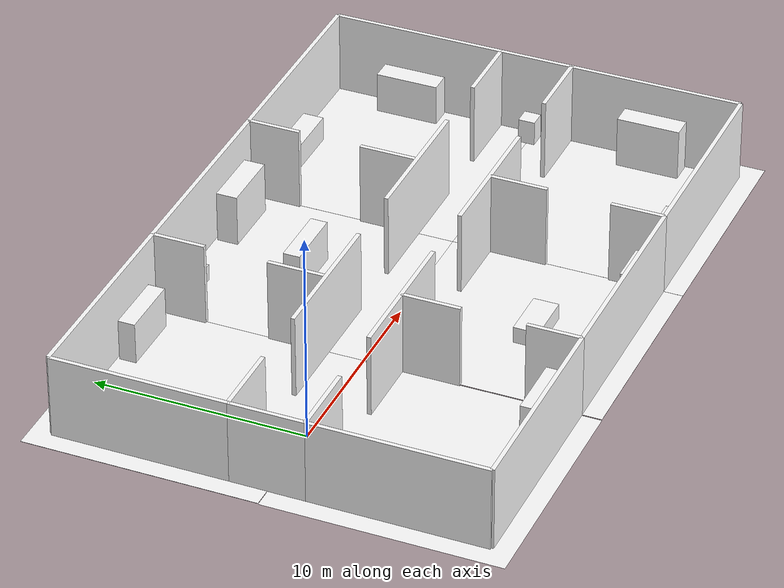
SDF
<?xml version="1.0" encoding="UTF-8"?>
<sdf version="1.9">
  <world name="office_plain">
    <physics type="ode">
      <max_step_size>0.004</max_step_size>
      <real_time_factor>1.0</real_time_factor>
      <real_time_update_rate>250</real_time_update_rate>
    </physics>
    <gravity>0 0 -9.81</gravity>
    <magnetic_field>6e-06 2.3e-05 -4.2e-05</magnetic_field>
    <atmosphere type="adiabatic"/>
    <scene>
      <grid>false</grid>
      <ambient>0.4 0.4 0.4 1</ambient>
      <background>0.7 0.7 0.7 1</background>
      <shadows>false</shadows>
    </scene>
    <include>
      <uri>model://office_plain_scene</uri>
      <name>office_plain_scene</name>
      <pose>0 0 0 0 0 0</pose>
    </include>
    <light name="sunUTC" type="directional">
      <pose>0 0 500 0 -0 0</pose>
      <cast_shadows>true</cast_shadows>
      <intensity>1</intensity>
      <direction>0.001 0.625 -0.78</direction>
      <diffuse>0.904 0.904 0.904 1</diffuse>
      <specular>0.271 0.271 0.271 1</specular>
      <attenuation><range>2000</range><linear>0</linear><constant>1</constant><quadratic>0</quadratic></attenuation>
      <spot><inner_angle>0</inner_angle><outer_angle>0</outer_angle><falloff>0</falloff></spot>
    </light>
    <spherical_coordinates>
      <surface_model>EARTH_WGS84</surface_model>
      <world_frame_orientation>ENU</world_frame_orientation>
      <latitude_deg>47.397971057728974</latitude_deg>
      <longitude_deg> 8.546163739800146</longitude_deg>
      <elevation>0</elevation>
    </spherical_coordinates>
  </world>
</sdf>

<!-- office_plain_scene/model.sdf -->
<!-- GENERATED by docker/sim/tools/gen_office_world.py -- do not edit. -->
<sdf version="1.9">
  <model name="office_plain_scene">
    <static>true</static>
    <link name="ground">
      <collision name="c"><geometry><plane><normal>0 0 1</normal><size>100 100</size></plane></geometry></collision>
    </link>
    <link name="floor_00">
      <pose>0.5 -5.5 0 0 0 0</pose>
      <visual name="v">
        <geometry><plane><normal>0 0 1</normal><size>11.0 11.0</size></plane></geometry>
        <material>
          <diffuse>1 1 1 1</diffuse>
          <emissive>0.55 0.55 0.55 1</emissive>
          <pbr><metal>
            <albedo_map>model://office_plain_scene/materials/textures/floor_00.png</albedo_map>
            <emissive_map>model://office_plain_scene/materials/textures/floor_00.png</emissive_map>
            <metalness>0.0</metalness><roughness>1.0</roughness>
          </metal></pbr>
        </material>
      </visual>
    </link>
    <link name="floor_01">
      <pose>0.5 5.5 0 0 0 0</pose>
      <visual name="v">
        <geometry><plane><normal>0 0 1</normal><size>11.0 11.0</size></plane></geometry>
        <material>
          <diffuse>1 1 1 1</diffuse>
          <emissive>0.55 0.55 0.55 1</emissive>
          <pbr><metal>
            <albedo_map>model://office_plain_scene/materials/textures/floor_01.png</albedo_map>
            <emissive_map>model://office_plain_scene/materials/textures/floor_01.png</emissive_map>
            <metalness>0.0</metalness><roughness>1.0</roughness>
          </metal></pbr>
        </material>
      </visual>
    </link>
    <link name="floor_10">
      <pose>11.0 -5.5 0 0 0 0</pose>
      <visual name="v">
        <geometry><plane><normal>0 0 1</normal><size>10.0 11.0</size></plane></geometry>
        <material>
          <diffuse>1 1 1 1</diffuse>
          <emissive>0.15 0.15 0.15 1</emissive>
          <pbr><metal>
            <albedo_map>model://office_plain_scene/materials/textures/floor_10.png</albedo_map>
            <emissive_map>model://office_plain_scene/materials/textures/floor_10.png</emissive_map>
            <metalness>0.0</metalness><roughness>1.0</roughness>
          </metal></pbr>
        </material>
      </visual>
    </link>
    <link name="floor_11">
      <pose>11.0 5.5 0 0 0 0</pose>
      <visual name="v">
        <geometry><plane><normal>0 0 1</normal><size>10.0 11.0</size></plane></geometry>
        <material>
          <diffuse>1 1 1 1</diffuse>
          <emissive>0.55 0.55 0.55 1</emissive>
          <pbr><metal>
            <albedo_map>model://office_plain_scene/materials/textures/floor_11.png</albedo_map>
            <emissive_map>model://office_plain_scene/materials/textures/floor_11.png</emissive_map>
            <metalness>0.0</metalness><roughness>1.0</roughness>
          </metal></pbr>
        </material>
      </visual>
    </link>
    <link name="floor_20">
      <pose>21.5 -5.5 0 0 0 0</pose>
      <visual name="v">
        <geometry><plane><normal>0 0 1</normal><size>11.0 11.0</size></plane></geometry>
        <material>
          <diffuse>1 1 1 1</diffuse>
          <emissive>0.55 0.55 0.55 1</emissive>
          <pbr><metal>
            <albedo_map>model://office_plain_scene/materials/textures/floor_20.png</albedo_map>
            <emissive_map>model://office_plain_scene/materials/textures/floor_20.png</emissive_map>
            <metalness>0.0</metalness><roughness>1.0</roughness>
          </metal></pbr>
        </material>
      </visual>
    </link>
    <link name="floor_21">
      <pose>21.5 5.5 0 0 0 0</pose>
      <visual name="v">
        <geometry><plane><normal>0 0 1</normal><size>11.0 11.0</size></plane></geometry>
        <material>
          <diffuse>1 1 1 1</diffuse>
          <emissive>0.55 0.55 0.55 1</emissive>
          <pbr><metal>
            <albedo_map>model://office_plain_scene/materials/textures/floor_21.png</albedo_map>
            <emissive_map>model://office_plain_scene/materials/textures/floor_21.png</emissive_map>
            <metalness>0.0</metalness><roughness>1.0</roughness>
          </metal></pbr>
        </material>
      </visual>
    </link>
    <link name="outer_s0">
      <pose>1.0 -10.0 2.0 0 0 0</pose>
      <collision name="c"><geometry><box><size>10.0 0.2 4.0</size></box></geometry></collision>
      <visual name="v">
        <geometry><box><size>10.0 0.2 4.0</size></box></geometry>
        <material>
          <diffuse>1 1 1 1</diffuse>
          <emissive>0.55 0.55 0.55 1</emissive>
          <pbr><metal>
            <albedo_map>model://office_plain_scene/materials/textures/outer_s0.png</albedo_map>
            <emissive_map>model://office_plain_scene/materials/textures/outer_s0.png</emissive_map>
            <metalness>0.0</metalness><roughness>1.0</roughness>
          </metal></pbr>
        </material>
      </visual>
    </link>
    <link name="outer_n0">
      <pose>1.0 10.0 2.0 0 0 0</pose>
      <collision name="c"><geometry><box><size>10.0 0.2 4.0</size></box></geometry></collision>
      <visual name="v">
        <geometry><box><size>10.0 0.2 4.0</size></box></geometry>
        <material>
          <diffuse>1 1 1 1</diffuse>
          <emissive>0.55 0.55 0.55 1</emissive>
          <pbr><metal>
            <albedo_map>model://office_plain_scene/materials/textures/outer_n0.png</albedo_map>
            <emissive_map>model://office_plain_scene/materials/textures/outer_n0.png</emissive_map>
            <metalness>0.0</metalness><roughness>1.0</roughness>
          </metal></pbr>
        </material>
      </visual>
    </link>
    <link name="outer_s1">
      <pose>11.0 -10.0 2.0 0 0 0</pose>
      <collision name="c"><geometry><box><size>10.0 0.2 4.0</size></box></geometry></collision>
      <visual name="v">
        <geometry><box><size>10.0 0.2 4.0</size></box></geometry>
        <material>
          <diffuse>1 1 1 1</diffuse>
          <emissive>0.15 0.15 0.15 1</emissive>
          <pbr><metal>
            <albedo_map>model://office_plain_scene/materials/textures/outer_s1.png</albedo_map>
            <emissive_map>model://office_plain_scene/materials/textures/outer_s1.png</emissive_map>
            <metalness>0.0</metalness><roughness>1.0</roughness>
          </metal></pbr>
        </material>
      </visual>
    </link>
    <link name="outer_n1">
      <pose>11.0 10.0 2.0 0 0 0</pose>
      <collision name="c"><geometry><box><size>10.0 0.2 4.0</size></box></geometry></collision>
      <visual name="v">
        <geometry><box><size>10.0 0.2 4.0</size></box></geometry>
        <material>
          <diffuse>1 1 1 1</diffuse>
          <emissive>0.55 0.55 0.55 1</emissive>
          <pbr><metal>
            <albedo_map>model://office_plain_scene/materials/textures/outer_n1.png</albedo_map>
            <emissive_map>model://office_plain_scene/materials/textures/outer_n1.png</emissive_map>
            <metalness>0.0</metalness><roughness>1.0</roughness>
          </metal></pbr>
        </material>
      </visual>
    </link>
    <link name="outer_s2">
      <pose>21.0 -10.0 2.0 0 0 0</pose>
      <collision name="c"><geometry><box><size>10.0 0.2 4.0</size></box></geometry></collision>
      <visual name="v">
        <geometry><box><size>10.0 0.2 4.0</size></box></geometry>
        <material>
          <diffuse>1 1 1 1</diffuse>
          <emissive>0.55 0.55 0.55 1</emissive>
          <pbr><metal>
            <albedo_map>model://office_plain_scene/materials/textures/outer_s2.png</albedo_map>
            <emissive_map>model://office_plain_scene/materials/textures/outer_s2.png</emissive_map>
            <metalness>0.0</metalness><roughness>1.0</roughness>
          </metal></pbr>
        </material>
      </visual>
    </link>
    <link name="outer_n2">
      <pose>21.0 10.0 2.0 0 0 0</pose>
      <collision name="c"><geometry><box><size>10.0 0.2 4.0</size></box></geometry></collision>
      <visual name="v">
        <geometry><box><size>10.0 0.2 4.0</size></box></geometry>
        <material>
          <diffuse>1 1 1 1</diffuse>
          <emissive>0.55 0.55 0.55 1</emissive>
          <pbr><metal>
            <albedo_map>model://office_plain_scene/materials/textures/outer_n2.png</albedo_map>
            <emissive_map>model://office_plain_scene/materials/textures/outer_n2.png</emissive_map>
            <metalness>0.0</metalness><roughness>1.0</roughness>
          </metal></pbr>
        </material>
      </visual>
    </link>
    <link name="outer_w0">
      <pose>-4.0 -5.875 2.0 0 0 0</pose>
      <collision name="c"><geometry><box><size>0.2 8.25 4.0</size></box></geometry></collision>
      <visual name="v">
        <geometry><box><size>0.2 8.25 4.0</size></box></geometry>
        <material>
          <diffuse>1 1 1 1</diffuse>
          <emissive>0.55 0.55 0.55 1</emissive>
          <pbr><metal>
            <albedo_map>model://office_plain_scene/materials/textures/outer_w0.png</albedo_map>
            <emissive_map>model://office_plain_scene/materials/textures/outer_w0.png</emissive_map>
            <metalness>0.0</metalness><roughness>1.0</roughness>
          </metal></pbr>
        </material>
      </visual>
    </link>
    <link name="outer_e0">
      <pose>26.0 -5.875 2.0 0 0 0</pose>
      <collision name="c"><geometry><box><size>0.2 8.25 4.0</size></box></geometry></collision>
      <visual name="v">
        <geometry><box><size>0.2 8.25 4.0</size></box></geometry>
        <material>
          <diffuse>1 1 1 1</diffuse>
          <emissive>0.55 0.55 0.55 1</emissive>
          <pbr><metal>
            <albedo_map>model://office_plain_scene/materials/textures/outer_e0.png</albedo_map>
            <emissive_map>model://office_plain_scene/materials/textures/outer_e0.png</emissive_map>
            <metalness>0.0</metalness><roughness>1.0</roughness>
          </metal></pbr>
        </material>
      </visual>
    </link>
    <link name="outer_w1">
      <pose>-4.0 0.0 2.0 0 0 0</pose>
      <collision name="c"><geometry><box><size>0.2 3.5 4.0</size></box></geometry></collision>
      <visual name="v">
        <geometry><box><size>0.2 3.5 4.0</size></box></geometry>
        <material>
          <diffuse>1 1 1 1</diffuse>
          <emissive>0.55 0.55 0.55 1</emissive>
          <pbr><metal>
            <albedo_map>model://office_plain_scene/materials/textures/outer_w1.png</albedo_map>
            <emissive_map>model://office_plain_scene/materials/textures/outer_w1.png</emissive_map>
            <metalness>0.0</metalness><roughness>1.0</roughness>
          </metal></pbr>
        </material>
      </visual>
    </link>
    <link name="outer_e1">
      <pose>26.0 0.0 2.0 0 0 0</pose>
      <collision name="c"><geometry><box><size>0.2 3.5 4.0</size></box></geometry></collision>
      <visual name="v">
        <geometry><box><size>0.2 3.5 4.0</size></box></geometry>
        <material>
          <diffuse>1 1 1 1</diffuse>
          <emissive>0.55 0.55 0.55 1</emissive>
          <pbr><metal>
            <albedo_map>model://office_plain_scene/materials/textures/outer_e1.png</albedo_map>
            <emissive_map>model://office_plain_scene/materials/textures/outer_e1.png</emissive_map>
            <metalness>0.0</metalness><roughness>1.0</roughness>
          </metal></pbr>
        </material>
      </visual>
    </link>
    <link name="outer_w2">
      <pose>-4.0 5.875 2.0 0 0 0</pose>
      <collision name="c"><geometry><box><size>0.2 8.25 4.0</size></box></geometry></collision>
      <visual name="v">
        <geometry><box><size>0.2 8.25 4.0</size></box></geometry>
        <material>
          <diffuse>1 1 1 1</diffuse>
          <emissive>0.55 0.55 0.55 1</emissive>
          <pbr><metal>
            <albedo_map>model://office_plain_scene/materials/textures/outer_w2.png</albedo_map>
            <emissive_map>model://office_plain_scene/materials/textures/outer_w2.png</emissive_map>
            <metalness>0.0</metalness><roughness>1.0</roughness>
          </metal></pbr>
        </material>
      </visual>
    </link>
    <link name="outer_e2">
      <pose>26.0 5.875 2.0 0 0 0</pose>
      <collision name="c"><geometry><box><size>0.2 8.25 4.0</size></box></geometry></collision>
      <visual name="v">
        <geometry><box><size>0.2 8.25 4.0</size></box></geometry>
        <material>
          <diffuse>1 1 1 1</diffuse>
          <emissive>0.55 0.55 0.55 1</emissive>
          <pbr><metal>
            <albedo_map>model://office_plain_scene/materials/textures/outer_e2.png</albedo_map>
            <emissive_map>model://office_plain_scene/materials/textures/outer_e2.png</emissive_map>
            <metalness>0.0</metalness><roughness>1.0</roughness>
          </metal></pbr>
        </material>
      </visual>
    </link>
    <link name="corr_n0">
      <pose>-2.25 1.75 2.0 0 0 0</pose>
      <collision name="c"><geometry><box><size>3.5 0.2 4.0</size></box></geometry></collision>
      <visual name="v">
        <geometry><box><size>3.5 0.2 4.0</size></box></geometry>
        <material>
          <diffuse>1 1 1 1</diffuse>
          <emissive>0.55 0.55 0.55 1</emissive>
          <pbr><metal>
            <albedo_map>model://office_plain_scene/materials/textures/corr_n0.png</albedo_map>
            <emissive_map>model://office_plain_scene/materials/textures/corr_n0.png</emissive_map>
            <metalness>0.0</metalness><roughness>1.0</roughness>
          </metal></pbr>
        </material>
      </visual>
    </link>
    <link name="corr_s0">
      <pose>-2.25 -1.75 2.0 0 0 0</pose>
      <collision name="c"><geometry><box><size>3.5 0.2 4.0</size></box></geometry></collision>
      <visual name="v">
        <geometry><box><size>3.5 0.2 4.0</size></box></geometry>
        <material>
          <diffuse>1 1 1 1</diffuse>
          <emissive>0.55 0.55 0.55 1</emissive>
          <pbr><metal>
            <albedo_map>model://office_plain_scene/materials/textures/corr_s0.png</albedo_map>
            <emissive_map>model://office_plain_scene/materials/textures/corr_s0.png</emissive_map>
            <metalness>0.0</metalness><roughness>1.0</roughness>
          </metal></pbr>
        </material>
      </visual>
    </link>
    <link name="corr_n1">
      <pose>6.0 1.75 2.0 0 0 0</pose>
      <collision name="c"><geometry><box><size>7.0 0.2 4.0</size></box></geometry></collision>
      <visual name="v">
        <geometry><box><size>7.0 0.2 4.0</size></box></geometry>
        <material>
          <diffuse>1 1 1 1</diffuse>
          <emissive>0.55 0.55 0.55 1</emissive>
          <pbr><metal>
            <albedo_map>model://office_plain_scene/materials/textures/corr_n1.png</albedo_map>
            <emissive_map>model://office_plain_scene/materials/textures/corr_n1.png</emissive_map>
            <metalness>0.0</metalness><roughness>1.0</roughness>
          </metal></pbr>
        </material>
      </visual>
    </link>
    <link name="corr_s1">
      <pose>6.0 -1.75 2.0 0 0 0</pose>
      <collision name="c"><geometry><box><size>7.0 0.2 4.0</size></box></geometry></collision>
      <visual name="v">
        <geometry><box><size>7.0 0.2 4.0</size></box></geometry>
        <material>
          <diffuse>1 1 1 1</diffuse>
          <emissive>0.15 0.15 0.15 1</emissive>
          <pbr><metal>
            <albedo_map>model://office_plain_scene/materials/textures/corr_s1.png</albedo_map>
            <emissive_map>model://office_plain_scene/materials/textures/corr_s1.png</emissive_map>
            <metalness>0.0</metalness><roughness>1.0</roughness>
          </metal></pbr>
        </material>
      </visual>
    </link>
    <link name="corr_n2">
      <pose>16.0 1.75 2.0 0 0 0</pose>
      <collision name="c"><geometry><box><size>7.0 0.2 4.0</size></box></geometry></collision>
      <visual name="v">
        <geometry><box><size>7.0 0.2 4.0</size></box></geometry>
        <material>
          <diffuse>1 1 1 1</diffuse>
          <emissive>0.55 0.55 0.55 1</emissive>
          <pbr><metal>
            <albedo_map>model://office_plain_scene/materials/textures/corr_n2.png</albedo_map>
            <emissive_map>model://office_plain_scene/materials/textures/corr_n2.png</emissive_map>
            <metalness>0.0</metalness><roughness>1.0</roughness>
          </metal></pbr>
        </material>
      </visual>
    </link>
    <link name="corr_s2">
      <pose>16.0 -1.75 2.0 0 0 0</pose>
      <collision name="c"><geometry><box><size>7.0 0.2 4.0</size></box></geometry></collision>
      <visual name="v">
        <geometry><box><size>7.0 0.2 4.0</size></box></geometry>
        <material>
          <diffuse>1 1 1 1</diffuse>
          <emissive>0.15 0.15 0.15 1</emissive>
          <pbr><metal>
            <albedo_map>model://office_plain_scene/materials/textures/corr_s2.png</albedo_map>
            <emissive_map>model://office_plain_scene/materials/textures/corr_s2.png</emissive_map>
            <metalness>0.0</metalness><roughness>1.0</roughness>
          </metal></pbr>
        </material>
      </visual>
    </link>
    <link name="corr_n3">
      <pose>24.25 1.75 2.0 0 0 0</pose>
      <collision name="c"><geometry><box><size>3.5 0.2 4.0</size></box></geometry></collision>
      <visual name="v">
        <geometry><box><size>3.5 0.2 4.0</size></box></geometry>
        <material>
          <diffuse>1 1 1 1</diffuse>
          <emissive>0.55 0.55 0.55 1</emissive>
          <pbr><metal>
            <albedo_map>model://office_plain_scene/materials/textures/corr_n3.png</albedo_map>
            <emissive_map>model://office_plain_scene/materials/textures/corr_n3.png</emissive_map>
            <metalness>0.0</metalness><roughness>1.0</roughness>
          </metal></pbr>
        </material>
      </visual>
    </link>
    <link name="corr_s3">
      <pose>24.25 -1.75 2.0 0 0 0</pose>
      <collision name="c"><geometry><box><size>3.5 0.2 4.0</size></box></geometry></collision>
      <visual name="v">
        <geometry><box><size>3.5 0.2 4.0</size></box></geometry>
        <material>
          <diffuse>1 1 1 1</diffuse>
          <emissive>0.55 0.55 0.55 1</emissive>
          <pbr><metal>
            <albedo_map>model://office_plain_scene/materials/textures/corr_s3.png</albedo_map>
            <emissive_map>model://office_plain_scene/materials/textures/corr_s3.png</emissive_map>
            <metalness>0.0</metalness><roughness>1.0</roughness>
          </metal></pbr>
        </material>
      </visual>
    </link>
    <link name="part0_n0">
      <pose>6.0 3.125 2.0 0 0 0</pose>
      <collision name="c"><geometry><box><size>0.2 2.75 4.0</size></box></geometry></collision>
      <visual name="v">
        <geometry><box><size>0.2 2.75 4.0</size></box></geometry>
        <material>
          <diffuse>1 1 1 1</diffuse>
          <emissive>0.55 0.55 0.55 1</emissive>
          <pbr><metal>
            <albedo_map>model://office_plain_scene/materials/textures/part0_n0.png</albedo_map>
            <emissive_map>model://office_plain_scene/materials/textures/part0_n0.png</emissive_map>
            <metalness>0.0</metalness><roughness>1.0</roughness>
          </metal></pbr>
        </material>
      </visual>
    </link>
    <link name="part0_n1">
      <pose>6.0 8.75 2.0 0 0 0</pose>
      <collision name="c"><geometry><box><size>0.2 2.5 4.0</size></box></geometry></collision>
      <visual name="v">
        <geometry><box><size>0.2 2.5 4.0</size></box></geometry>
        <material>
          <diffuse>1 1 1 1</diffuse>
          <emissive>0.55 0.55 0.55 1</emissive>
          <pbr><metal>
            <albedo_map>model://office_plain_scene/materials/textures/part0_n1.png</albedo_map>
            <emissive_map>model://office_plain_scene/materials/textures/part0_n1.png</emissive_map>
            <metalness>0.0</metalness><roughness>1.0</roughness>
          </metal></pbr>
        </material>
      </visual>
    </link>
    <link name="part0_s0">
      <pose>6.0 -8.75 2.0 0 0 0</pose>
      <collision name="c"><geometry><box><size>0.2 2.5 4.0</size></box></geometry></collision>
      <visual name="v">
        <geometry><box><size>0.2 2.5 4.0</size></box></geometry>
        <material>
          <diffuse>1 1 1 1</diffuse>
          <emissive>0.15 0.15 0.15 1</emissive>
          <pbr><metal>
            <albedo_map>model://office_plain_scene/materials/textures/part0_s0.png</albedo_map>
            <emissive_map>model://office_plain_scene/materials/textures/part0_s0.png</emissive_map>
            <metalness>0.0</metalness><roughness>1.0</roughness>
          </metal></pbr>
        </material>
      </visual>
    </link>
    <link name="part0_s1">
      <pose>6.0 -3.125 2.0 0 0 0</pose>
      <collision name="c"><geometry><box><size>0.2 2.75 4.0</size></box></geometry></collision>
      <visual name="v">
        <geometry><box><size>0.2 2.75 4.0</size></box></geometry>
        <material>
          <diffuse>1 1 1 1</diffuse>
          <emissive>0.15 0.15 0.15 1</emissive>
          <pbr><metal>
            <albedo_map>model://office_plain_scene/materials/textures/part0_s1.png</albedo_map>
            <emissive_map>model://office_plain_scene/materials/textures/part0_s1.png</emissive_map>
            <metalness>0.0</metalness><roughness>1.0</roughness>
          </metal></pbr>
        </material>
      </visual>
    </link>
    <link name="part1_n0">
      <pose>16.0 3.125 2.0 0 0 0</pose>
      <collision name="c"><geometry><box><size>0.2 2.75 4.0</size></box></geometry></collision>
      <visual name="v">
        <geometry><box><size>0.2 2.75 4.0</size></box></geometry>
        <material>
          <diffuse>1 1 1 1</diffuse>
          <emissive>0.55 0.55 0.55 1</emissive>
          <pbr><metal>
            <albedo_map>model://office_plain_scene/materials/textures/part1_n0.png</albedo_map>
            <emissive_map>model://office_plain_scene/materials/textures/part1_n0.png</emissive_map>
            <metalness>0.0</metalness><roughness>1.0</roughness>
          </metal></pbr>
        </material>
      </visual>
    </link>
    <link name="part1_n1">
      <pose>16.0 8.75 2.0 0 0 0</pose>
      <collision name="c"><geometry><box><size>0.2 2.5 4.0</size></box></geometry></collision>
      <visual name="v">
        <geometry><box><size>0.2 2.5 4.0</size></box></geometry>
        <material>
          <diffuse>1 1 1 1</diffuse>
          <emissive>0.55 0.55 0.55 1</emissive>
          <pbr><metal>
            <albedo_map>model://office_plain_scene/materials/textures/part1_n1.png</albedo_map>
            <emissive_map>model://office_plain_scene/materials/textures/part1_n1.png</emissive_map>
            <metalness>0.0</metalness><roughness>1.0</roughness>
          </metal></pbr>
        </material>
      </visual>
    </link>
    <link name="part1_s0">
      <pose>16.0 -8.75 2.0 0 0 0</pose>
      <collision name="c"><geometry><box><size>0.2 2.5 4.0</size></box></geometry></collision>
      <visual name="v">
        <geometry><box><size>0.2 2.5 4.0</size></box></geometry>
        <material>
          <diffuse>1 1 1 1</diffuse>
          <emissive>0.55 0.55 0.55 1</emissive>
          <pbr><metal>
            <albedo_map>model://office_plain_scene/materials/textures/part1_s0.png</albedo_map>
            <emissive_map>model://office_plain_scene/materials/textures/part1_s0.png</emissive_map>
            <metalness>0.0</metalness><roughness>1.0</roughness>
          </metal></pbr>
        </material>
      </visual>
    </link>
    <link name="part1_s1">
      <pose>16.0 -3.125 2.0 0 0 0</pose>
      <collision name="c"><geometry><box><size>0.2 2.75 4.0</size></box></geometry></collision>
      <visual name="v">
        <geometry><box><size>0.2 2.75 4.0</size></box></geometry>
        <material>
          <diffuse>1 1 1 1</diffuse>
          <emissive>0.55 0.55 0.55 1</emissive>
          <pbr><metal>
            <albedo_map>model://office_plain_scene/materials/textures/part1_s1.png</albedo_map>
            <emissive_map>model://office_plain_scene/materials/textures/part1_s1.png</emissive_map>
            <metalness>0.0</metalness><roughness>1.0</roughness>
          </metal></pbr>
        </material>
      </visual>
    </link>
    <link name="nw_desk">
      <pose>-2.5 8.8 0.4 0 0 0</pose>
      <collision name="c"><geometry><box><size>2.0 1.2 0.8</size></box></geometry></collision>
      <visual name="v">
        <geometry><box><size>2.0 1.2 0.8</size></box></geometry>
        <material>
          <diffuse>1 1 1 1</diffuse>
          <emissive>0.55 0.55 0.55 1</emissive>
          <pbr><metal>
            <albedo_map>model://office_plain_scene/materials/textures/nw_desk.png</albedo_map>
            <emissive_map>model://office_plain_scene/materials/textures/nw_desk.png</emissive_map>
            <metalness>0.0</metalness><roughness>1.0</roughness>
          </metal></pbr>
        </material>
      </visual>
    </link>
    <link name="nw_shelf">
      <pose>3.5 9.4 1.0 0 0 0</pose>
      <collision name="c"><geometry><box><size>3.0 0.8 2.0</size></box></geometry></collision>
      <visual name="v">
        <geometry><box><size>3.0 0.8 2.0</size></box></geometry>
        <material>
          <diffuse>1 1 1 1</diffuse>
          <emissive>0.55 0.55 0.55 1</emissive>
          <pbr><metal>
            <albedo_map>model://office_plain_scene/materials/textures/nw_shelf.png</albedo_map>
            <emissive_map>model://office_plain_scene/materials/textures/nw_shelf.png</emissive_map>
            <metalness>0.0</metalness><roughness>1.0</roughness>
          </metal></pbr>
        </material>
      </visual>
    </link>
    <link name="nw_cab">
      <pose>-3.3 4.0 0.6 0 0 0</pose>
      <collision name="c"><geometry><box><size>1.0 1.6 1.2</size></box></geometry></collision>
      <visual name="v">
        <geometry><box><size>1.0 1.6 1.2</size></box></geometry>
        <material>
          <diffuse>1 1 1 1</diffuse>
          <emissive>0.55 0.55 0.55 1</emissive>
          <pbr><metal>
            <albedo_map>model://office_plain_scene/materials/textures/nw_cab.png</albedo_map>
            <emissive_map>model://office_plain_scene/materials/textures/nw_cab.png</emissive_map>
            <metalness>0.0</metalness><roughness>1.0</roughness>
          </metal></pbr>
        </material>
      </visual>
    </link>
    <link name="nc_shelf">
      <pose>13.5 9.3 1.25 0 0 0</pose>
      <collision name="c"><geometry><box><size>3.0 1.0 2.5</size></box></geometry></collision>
      <visual name="v">
        <geometry><box><size>3.0 1.0 2.5</size></box></geometry>
        <material>
          <diffuse>1 1 1 1</diffuse>
          <emissive>0.55 0.55 0.55 1</emissive>
          <pbr><metal>
            <albedo_map>model://office_plain_scene/materials/textures/nc_shelf.png</albedo_map>
            <emissive_map>model://office_plain_scene/materials/textures/nc_shelf.png</emissive_map>
            <metalness>0.0</metalness><roughness>1.0</roughness>
          </metal></pbr>
        </material>
      </visual>
    </link>
    <link name="nc_desk">
      <pose>8.0 9.3 0.4 0 0 0</pose>
      <collision name="c"><geometry><box><size>2.0 1.0 0.8</size></box></geometry></collision>
      <visual name="v">
        <geometry><box><size>2.0 1.0 0.8</size></box></geometry>
        <material>
          <diffuse>1 1 1 1</diffuse>
          <emissive>0.55 0.55 0.55 1</emissive>
          <pbr><metal>
            <albedo_map>model://office_plain_scene/materials/textures/nc_desk.png</albedo_map>
            <emissive_map>model://office_plain_scene/materials/textures/nc_desk.png</emissive_map>
            <metalness>0.0</metalness><roughness>1.0</roughness>
          </metal></pbr>
        </material>
      </visual>
    </link>
    <link name="nc_rack">
      <pose>11.0 5.0 1.0 0 0 0</pose>
      <collision name="c"><geometry><box><size>3.0 0.8 2.0</size></box></geometry></collision>
      <visual name="v">
        <geometry><box><size>3.0 0.8 2.0</size></box></geometry>
        <material>
          <diffuse>1 1 1 1</diffuse>
          <emissive>0.55 0.55 0.55 1</emissive>
          <pbr><metal>
            <albedo_map>model://office_plain_scene/materials/textures/nc_rack.png</albedo_map>
            <emissive_map>model://office_plain_scene/materials/textures/nc_rack.png</emissive_map>
            <metalness>0.0</metalness><roughness>1.0</roughness>
          </metal></pbr>
        </material>
      </visual>
    </link>
    <link name="ne_shelf">
      <pose>25.3 6.0 1.0 0 0 0</pose>
      <collision name="c"><geometry><box><size>1.0 3.0 2.0</size></box></geometry></collision>
      <visual name="v">
        <geometry><box><size>1.0 3.0 2.0</size></box></geometry>
        <material>
          <diffuse>1 1 1 1</diffuse>
          <emissive>0.55 0.55 0.55 1</emissive>
          <pbr><metal>
            <albedo_map>model://office_plain_scene/materials/textures/ne_shelf.png</albedo_map>
            <emissive_map>model://office_plain_scene/materials/textures/ne_shelf.png</emissive_map>
            <metalness>0.0</metalness><roughness>1.0</roughness>
          </metal></pbr>
        </material>
      </visual>
    </link>
    <link name="ne_cab">
      <pose>20.0 9.3 0.6 0 0 0</pose>
      <collision name="c"><geometry><box><size>3.0 1.0 1.2</size></box></geometry></collision>
      <visual name="v">
        <geometry><box><size>3.0 1.0 1.2</size></box></geometry>
        <material>
          <diffuse>1 1 1 1</diffuse>
          <emissive>0.55 0.55 0.55 1</emissive>
          <pbr><metal>
            <albedo_map>model://office_plain_scene/materials/textures/ne_cab.png</albedo_map>
            <emissive_map>model://office_plain_scene/materials/textures/ne_cab.png</emissive_map>
            <metalness>0.0</metalness><roughness>1.0</roughness>
          </metal></pbr>
        </material>
      </visual>
    </link>
    <link name="sw_cab">
      <pose>-2.5 -8.8 0.6 0 0 0</pose>
      <collision name="c"><geometry><box><size>2.0 1.2 1.2</size></box></geometry></collision>
      <visual name="v">
        <geometry><box><size>2.0 1.2 1.2</size></box></geometry>
        <material>
          <diffuse>1 1 1 1</diffuse>
          <emissive>0.55 0.55 0.55 1</emissive>
          <pbr><metal>
            <albedo_map>model://office_plain_scene/materials/textures/sw_cab.png</albedo_map>
            <emissive_map>model://office_plain_scene/materials/textures/sw_cab.png</emissive_map>
            <metalness>0.0</metalness><roughness>1.0</roughness>
          </metal></pbr>
        </material>
      </visual>
    </link>
    <link name="sw_shelf">
      <pose>3.5 -9.3 1.4 0 0 0</pose>
      <collision name="c"><geometry><box><size>3.0 1.0 2.8</size></box></geometry></collision>
      <visual name="v">
        <geometry><box><size>3.0 1.0 2.8</size></box></geometry>
        <material>
          <diffuse>1 1 1 1</diffuse>
          <emissive>0.55 0.55 0.55 1</emissive>
          <pbr><metal>
            <albedo_map>model://office_plain_scene/materials/textures/sw_shelf.png</albedo_map>
            <emissive_map>model://office_plain_scene/materials/textures/sw_shelf.png</emissive_map>
            <metalness>0.0</metalness><roughness>1.0</roughness>
          </metal></pbr>
        </material>
      </visual>
    </link>
    <link name="sc_island">
      <pose>11.0 -6.0 0.4 0 0 0</pose>
      <collision name="c"><geometry><box><size>2.4 1.2 0.8</size></box></geometry></collision>
      <visual name="v">
        <geometry><box><size>2.4 1.2 0.8</size></box></geometry>
        <material>
          <diffuse>1 1 1 1</diffuse>
          <emissive>0.15 0.15 0.15 1</emissive>
          <pbr><metal>
            <albedo_map>model://office_plain_scene/materials/textures/sc_island.png</albedo_map>
            <emissive_map>model://office_plain_scene/materials/textures/sc_island.png</emissive_map>
            <metalness>0.0</metalness><roughness>1.0</roughness>
          </metal></pbr>
        </material>
      </visual>
    </link>
    <link name="sc_shelf">
      <pose>14.8 -9.3 1.0 0 0 0</pose>
      <collision name="c"><geometry><box><size>2.0 1.0 2.0</size></box></geometry></collision>
      <visual name="v">
        <geometry><box><size>2.0 1.0 2.0</size></box></geometry>
        <material>
          <diffuse>1 1 1 1</diffuse>
          <emissive>0.15 0.15 0.15 1</emissive>
          <pbr><metal>
            <albedo_map>model://office_plain_scene/materials/textures/sc_shelf.png</albedo_map>
            <emissive_map>model://office_plain_scene/materials/textures/sc_shelf.png</emissive_map>
            <metalness>0.0</metalness><roughness>1.0</roughness>
          </metal></pbr>
        </material>
      </visual>
    </link>
    <link name="se_shelf">
      <pose>25.3 -6.0 1.25 0 0 0</pose>
      <collision name="c"><geometry><box><size>1.0 3.0 2.5</size></box></geometry></collision>
      <visual name="v">
        <geometry><box><size>1.0 3.0 2.5</size></box></geometry>
        <material>
          <diffuse>1 1 1 1</diffuse>
          <emissive>0.55 0.55 0.55 1</emissive>
          <pbr><metal>
            <albedo_map>model://office_plain_scene/materials/textures/se_shelf.png</albedo_map>
            <emissive_map>model://office_plain_scene/materials/textures/se_shelf.png</emissive_map>
            <metalness>0.0</metalness><roughness>1.0</roughness>
          </metal></pbr>
        </material>
      </visual>
    </link>
    <link name="se_desk">
      <pose>19.0 -9.2 0.8 0 0 0</pose>
      <collision name="c"><geometry><box><size>2.4 1.2 1.6</size></box></geometry></collision>
      <visual name="v">
        <geometry><box><size>2.4 1.2 1.6</size></box></geometry>
        <material>
          <diffuse>1 1 1 1</diffuse>
          <emissive>0.55 0.55 0.55 1</emissive>
          <pbr><metal>
            <albedo_map>model://office_plain_scene/materials/textures/se_desk.png</albedo_map>
            <emissive_map>model://office_plain_scene/materials/textures/se_desk.png</emissive_map>
            <metalness>0.0</metalness><roughness>1.0</roughness>
          </metal></pbr>
        </material>
      </visual>
    </link>
    <link name="corr_planter">
      <pose>25.3 0.0 0.6 0 0 0</pose>
      <collision name="c"><geometry><box><size>0.8 0.8 1.2</size></box></geometry></collision>
      <visual name="v">
        <geometry><box><size>0.8 0.8 1.2</size></box></geometry>
        <material>
          <diffuse>1 1 1 1</diffuse>
          <emissive>0.55 0.55 0.55 1</emissive>
          <pbr><metal>
            <albedo_map>model://office_plain_scene/materials/textures/corr_planter.png</albedo_map>
            <emissive_map>model://office_plain_scene/materials/textures/corr_planter.png</emissive_map>
            <metalness>0.0</metalness><roughness>1.0</roughness>
          </metal></pbr>
        </material>
      </visual>
    </link>
  </model>
</sdf>
